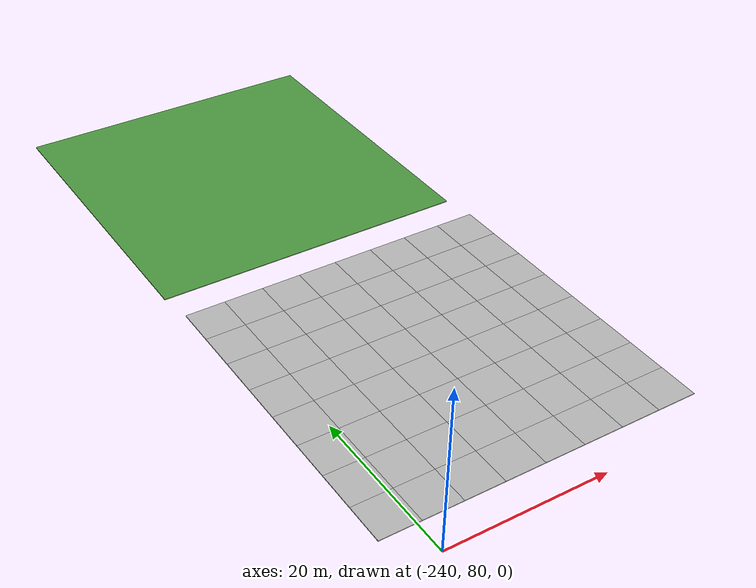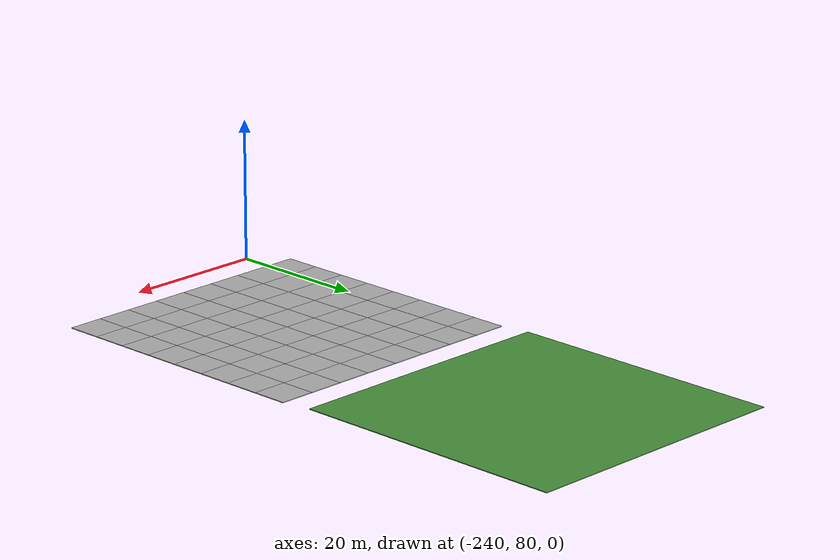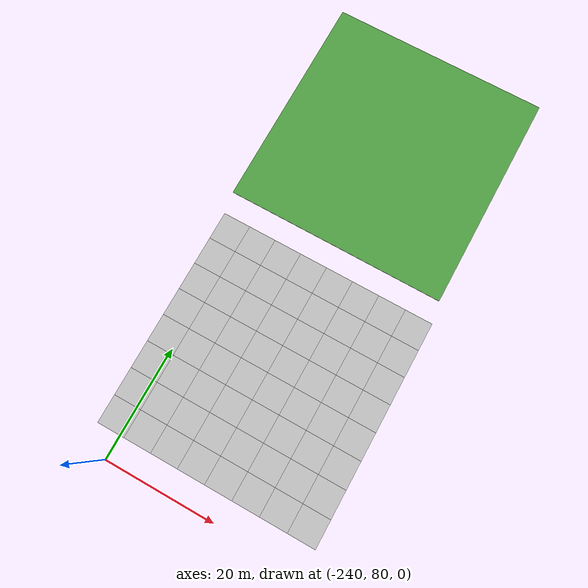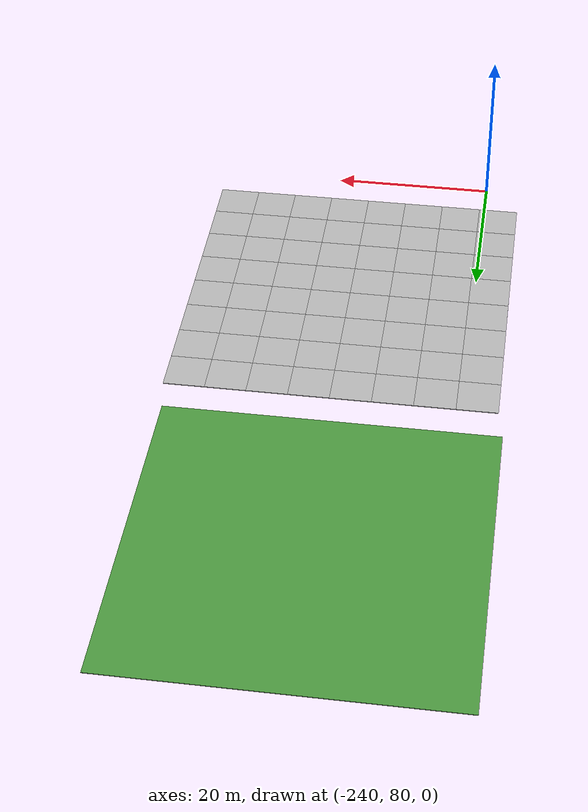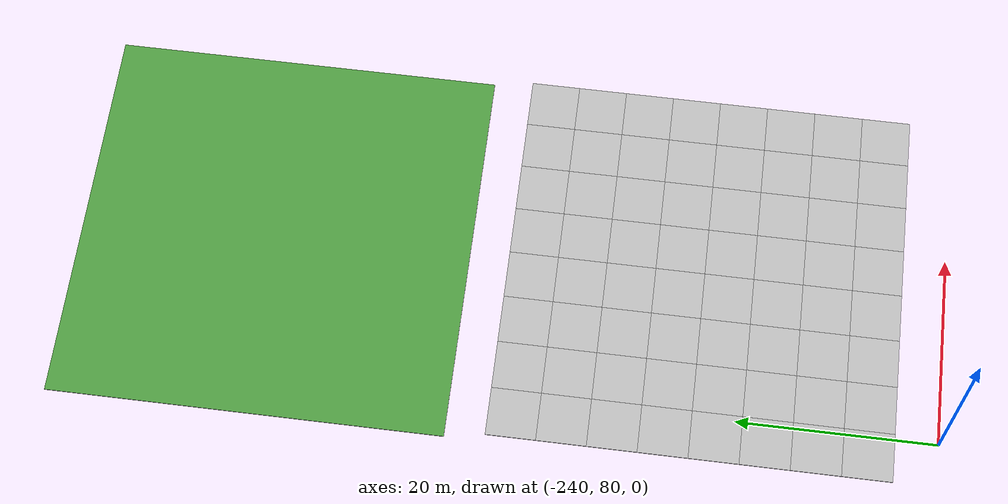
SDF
<sdf version="1.7">
 <world name="default">
  <model name="mud_plane_40x40_22">
   <model name="mud_plane_20x20">
    <model name="mud_plane">
     <static>1</static>
     <link name="link">
      <collision name="collision"><geometry><box><size>10 10 0.1</size></box></geometry></collision>
      <visual name="visual_1">
       <pose>-2.5 2.5 -0.05 0 -0 0</pose>
       <cast_shadows>0</cast_shadows>
       <geometry><box><size>5 5 0.1</size></box></geometry>
       <material>
        <script>
         <uri>model://mud_plane/materials/scripts</uri>
         <uri>model://mud_plane/materials/textures</uri>
         <name>vrc/mud</name>
        </script>
       </material>
      </visual>
      <visual name="visual_2">
       <pose>2.5 2.5 -0.05 0 -0 0</pose>
       <cast_shadows>0</cast_shadows>
       <geometry><box><size>5 5 0.1</size></box></geometry>
       <material>
        <script>
         <uri>model://mud_plane/materials/scripts</uri>
         <uri>model://mud_plane/materials/textures</uri>
         <name>vrc/mud</name>
        </script>
       </material>
      </visual>
      <visual name="visual_3">
       <pose>2.5 -2.5 -0.05 0 -0 0</pose>
       <cast_shadows>0</cast_shadows>
       <geometry><box><size>5 5 0.1</size></box></geometry>
       <material>
        <script>
         <uri>model://mud_plane/materials/scripts</uri>
         <uri>model://mud_plane/materials/textures</uri>
         <name>vrc/mud</name>
        </script>
       </material>
      </visual>
      <visual name="visual_4">
       <pose>-2.5 -2.5 -0.05 0 -0 0</pose>
       <cast_shadows>0</cast_shadows>
       <geometry><box><size>5 5 0.1</size></box></geometry>
       <material>
        <script>
         <uri>model://mud_plane/materials/scripts</uri>
         <uri>model://mud_plane/materials/textures</uri>
         <name>vrc/mud</name>
        </script>
       </material>
      </visual>
     </link>
     <pose>-4.99986 -4.99991 0 0 -0 0</pose>
    </model>
    <model name="mud_plane_0">
     <static>1</static>
     <link name="link">
      <collision name="collision"><geometry><box><size>10 10 0.1</size></box></geometry></collision>
      <visual name="visual_1">
       <pose>-2.5 2.5 -0.05 0 -0 0</pose>
       <cast_shadows>0</cast_shadows>
       <geometry><box><size>5 5 0.1</size></box></geometry>
       <material>
        <script>
         <uri>model://mud_plane/materials/scripts</uri>
         <uri>model://mud_plane/materials/textures</uri>
         <name>vrc/mud</name>
        </script>
       </material>
      </visual>
      <visual name="visual_2">
       <pose>2.5 2.5 -0.05 0 -0 0</pose>
       <cast_shadows>0</cast_shadows>
       <geometry><box><size>5 5 0.1</size></box></geometry>
       <material>
        <script>
         <uri>model://mud_plane/materials/scripts</uri>
         <uri>model://mud_plane/materials/textures</uri>
         <name>vrc/mud</name>
        </script>
       </material>
      </visual>
      <visual name="visual_3">
       <pose>2.5 -2.5 -0.05 0 -0 0</pose>
       <cast_shadows>0</cast_shadows>
       <geometry><box><size>5 5 0.1</size></box></geometry>
       <material>
        <script>
         <uri>model://mud_plane/materials/scripts</uri>
         <uri>model://mud_plane/materials/textures</uri>
         <name>vrc/mud</name>
        </script>
       </material>
      </visual>
      <visual name="visual_4">
       <pose>-2.5 -2.5 -0.05 0 -0 0</pose>
       <cast_shadows>0</cast_shadows>
       <geometry><box><size>5 5 0.1</size></box></geometry>
       <material>
        <script>
         <uri>model://mud_plane/materials/scripts</uri>
         <uri>model://mud_plane/materials/textures</uri>
         <name>vrc/mud</name>
        </script>
       </material>
      </visual>
     </link>
     <pose>-4.99946 4.99954 0 0 -0 0</pose>
    </model>
    <model name="mud_plane_1">
     <static>1</static>
     <link name="link">
      <collision name="collision"><geometry><box><size>10 10 0.1</size></box></geometry></collision>
      <visual name="visual_1">
       <pose>-2.5 2.5 -0.05 0 -0 0</pose>
       <cast_shadows>0</cast_shadows>
       <geometry><box><size>5 5 0.1</size></box></geometry>
       <material>
        <script>
         <uri>model://mud_plane/materials/scripts</uri>
         <uri>model://mud_plane/materials/textures</uri>
         <name>vrc/mud</name>
        </script>
       </material>
      </visual>
      <visual name="visual_2">
       <pose>2.5 2.5 -0.05 0 -0 0</pose>
       <cast_shadows>0</cast_shadows>
       <geometry><box><size>5 5 0.1</size></box></geometry>
       <material>
        <script>
         <uri>model://mud_plane/materials/scripts</uri>
         <uri>model://mud_plane/materials/textures</uri>
         <name>vrc/mud</name>
        </script>
       </material>
      </visual>
      <visual name="visual_3">
       <pose>2.5 -2.5 -0.05 0 -0 0</pose>
       <cast_shadows>0</cast_shadows>
       <geometry><box><size>5 5 0.1</size></box></geometry>
       <material>
        <script>
         <uri>model://mud_plane/materials/scripts</uri>
         <uri>model://mud_plane/materials/textures</uri>
         <name>vrc/mud</name>
        </script>
       </material>
      </visual>
      <visual name="visual_4">
       <pose>-2.5 -2.5 -0.05 0 -0 0</pose>
       <cast_shadows>0</cast_shadows>
       <geometry><box><size>5 5 0.1</size></box></geometry>
       <material>
        <script>
         <uri>model://mud_plane/materials/scripts</uri>
         <uri>model://mud_plane/materials/textures</uri>
         <name>vrc/mud</name>
        </script>
       </material>
      </visual>
     </link>
     <pose>4.99964 -4.99949 0 0 -0 0</pose>
    </model>
    <model name="mud_plane_2">
     <static>1</static>
     <link name="link">
      <collision name="collision"><geometry><box><size>10 10 0.1</size></box></geometry></collision>
      <visual name="visual_1">
       <pose>-2.5 2.5 -0.05 0 -0 0</pose>
       <cast_shadows>0</cast_shadows>
       <geometry><box><size>5 5 0.1</size></box></geometry>
       <material>
        <script>
         <uri>model://mud_plane/materials/scripts</uri>
         <uri>model://mud_plane/materials/textures</uri>
         <name>vrc/mud</name>
        </script>
       </material>
      </visual>
      <visual name="visual_2">
       <pose>2.5 2.5 -0.05 0 -0 0</pose>
       <cast_shadows>0</cast_shadows>
       <geometry><box><size>5 5 0.1</size></box></geometry>
       <material>
        <script>
         <uri>model://mud_plane/materials/scripts</uri>
         <uri>model://mud_plane/materials/textures</uri>
         <name>vrc/mud</name>
        </script>
       </material>
      </visual>
      <visual name="visual_3">
       <pose>2.5 -2.5 -0.05 0 -0 0</pose>
       <cast_shadows>0</cast_shadows>
       <geometry><box><size>5 5 0.1</size></box></geometry>
       <material>
        <script>
         <uri>model://mud_plane/materials/scripts</uri>
         <uri>model://mud_plane/materials/textures</uri>
         <name>vrc/mud</name>
        </script>
       </material>
      </visual>
      <visual name="visual_4">
       <pose>-2.5 -2.5 -0.05 0 -0 0</pose>
       <cast_shadows>0</cast_shadows>
       <geometry><box><size>5 5 0.1</size></box></geometry>
       <material>
        <script>
         <uri>model://mud_plane/materials/scripts</uri>
         <uri>model://mud_plane/materials/textures</uri>
         <name>vrc/mud</name>
        </script>
       </material>
      </visual>
     </link>
     <pose>4.99967 4.99986 0 0 -0 0</pose>
    </model>
    <static>0</static>
    <pose>-9.99895 9.99843 0 0 -0 0</pose>
   </model>
   <model name="mud_plane_20x20_0">
    <model name="mud_plane">
     <static>1</static>
     <link name="link">
      <collision name="collision"><geometry><box><size>10 10 0.1</size></box></geometry></collision>
      <visual name="visual_1">
       <pose>-2.5 2.5 -0.05 0 -0 0</pose>
       <cast_shadows>0</cast_shadows>
       <geometry><box><size>5 5 0.1</size></box></geometry>
       <material>
        <script>
         <uri>model://mud_plane/materials/scripts</uri>
         <uri>model://mud_plane/materials/textures</uri>
         <name>vrc/mud</name>
        </script>
       </material>
      </visual>
      <visual name="visual_2">
       <pose>2.5 2.5 -0.05 0 -0 0</pose>
       <cast_shadows>0</cast_shadows>
       <geometry><box><size>5 5 0.1</size></box></geometry>
       <material>
        <script>
         <uri>model://mud_plane/materials/scripts</uri>
         <uri>model://mud_plane/materials/textures</uri>
         <name>vrc/mud</name>
        </script>
       </material>
      </visual>
      <visual name="visual_3">
       <pose>2.5 -2.5 -0.05 0 -0 0</pose>
       <cast_shadows>0</cast_shadows>
       <geometry><box><size>5 5 0.1</size></box></geometry>
       <material>
        <script>
         <uri>model://mud_plane/materials/scripts</uri>
         <uri>model://mud_plane/materials/textures</uri>
         <name>vrc/mud</name>
        </script>
       </material>
      </visual>
      <visual name="visual_4">
       <pose>-2.5 -2.5 -0.05 0 -0 0</pose>
       <cast_shadows>0</cast_shadows>
       <geometry><box><size>5 5 0.1</size></box></geometry>
       <material>
        <script>
         <uri>model://mud_plane/materials/scripts</uri>
         <uri>model://mud_plane/materials/textures</uri>
         <name>vrc/mud</name>
        </script>
       </material>
      </visual>
     </link>
     <pose>-4.99986 -4.99991 0 0 -0 0</pose>
    </model>
    <model name="mud_plane_0">
     <static>1</static>
     <link name="link">
      <collision name="collision"><geometry><box><size>10 10 0.1</size></box></geometry></collision>
      <visual name="visual_1">
       <pose>-2.5 2.5 -0.05 0 -0 0</pose>
       <cast_shadows>0</cast_shadows>
       <geometry><box><size>5 5 0.1</size></box></geometry>
       <material>
        <script>
         <uri>model://mud_plane/materials/scripts</uri>
         <uri>model://mud_plane/materials/textures</uri>
         <name>vrc/mud</name>
        </script>
       </material>
      </visual>
      <visual name="visual_2">
       <pose>2.5 2.5 -0.05 0 -0 0</pose>
       <cast_shadows>0</cast_shadows>
       <geometry><box><size>5 5 0.1</size></box></geometry>
       <material>
        <script>
         <uri>model://mud_plane/materials/scripts</uri>
         <uri>model://mud_plane/materials/textures</uri>
         <name>vrc/mud</name>
        </script>
       </material>
      </visual>
      <visual name="visual_3">
       <pose>2.5 -2.5 -0.05 0 -0 0</pose>
       <cast_shadows>0</cast_shadows>
       <geometry><box><size>5 5 0.1</size></box></geometry>
       <material>
        <script>
         <uri>model://mud_plane/materials/scripts</uri>
         <uri>model://mud_plane/materials/textures</uri>
         <name>vrc/mud</name>
        </script>
       </material>
      </visual>
      <visual name="visual_4">
       <pose>-2.5 -2.5 -0.05 0 -0 0</pose>
       <cast_shadows>0</cast_shadows>
       <geometry><box><size>5 5 0.1</size></box></geometry>
       <material>
        <script>
         <uri>model://mud_plane/materials/scripts</uri>
         <uri>model://mud_plane/materials/textures</uri>
         <name>vrc/mud</name>
        </script>
       </material>
      </visual>
     </link>
     <pose>-4.99946 4.99954 0 0 -0 0</pose>
    </model>
    <model name="mud_plane_1">
     <static>1</static>
     <link name="link">
      <collision name="collision"><geometry><box><size>10 10 0.1</size></box></geometry></collision>
      <visual name="visual_1">
       <pose>-2.5 2.5 -0.05 0 -0 0</pose>
       <cast_shadows>0</cast_shadows>
       <geometry><box><size>5 5 0.1</size></box></geometry>
       <material>
        <script>
         <uri>model://mud_plane/materials/scripts</uri>
         <uri>model://mud_plane/materials/textures</uri>
         <name>vrc/mud</name>
        </script>
       </material>
      </visual>
      <visual name="visual_2">
       <pose>2.5 2.5 -0.05 0 -0 0</pose>
       <cast_shadows>0</cast_shadows>
       <geometry><box><size>5 5 0.1</size></box></geometry>
       <material>
        <script>
         <uri>model://mud_plane/materials/scripts</uri>
         <uri>model://mud_plane/materials/textures</uri>
         <name>vrc/mud</name>
        </script>
       </material>
      </visual>
      <visual name="visual_3">
       <pose>2.5 -2.5 -0.05 0 -0 0</pose>
       <cast_shadows>0</cast_shadows>
       <geometry><box><size>5 5 0.1</size></box></geometry>
       <material>
        <script>
         <uri>model://mud_plane/materials/scripts</uri>
         <uri>model://mud_plane/materials/textures</uri>
         <name>vrc/mud</name>
        </script>
       </material>
      </visual>
      <visual name="visual_4">
       <pose>-2.5 -2.5 -0.05 0 -0 0</pose>
       <cast_shadows>0</cast_shadows>
       <geometry><box><size>5 5 0.1</size></box></geometry>
       <material>
        <script>
         <uri>model://mud_plane/materials/scripts</uri>
         <uri>model://mud_plane/materials/textures</uri>
         <name>vrc/mud</name>
        </script>
       </material>
      </visual>
     </link>
     <pose>4.99964 -4.99949 0 0 -0 0</pose>
    </model>
    <model name="mud_plane_2">
     <static>1</static>
     <link name="link">
      <collision name="collision"><geometry><box><size>10 10 0.1</size></box></geometry></collision>
      <visual name="visual_1">
       <pose>-2.5 2.5 -0.05 0 -0 0</pose>
       <cast_shadows>0</cast_shadows>
       <geometry><box><size>5 5 0.1</size></box></geometry>
       <material>
        <script>
         <uri>model://mud_plane/materials/scripts</uri>
         <uri>model://mud_plane/materials/textures</uri>
         <name>vrc/mud</name>
        </script>
       </material>
      </visual>
      <visual name="visual_2">
       <pose>2.5 2.5 -0.05 0 -0 0</pose>
       <cast_shadows>0</cast_shadows>
       <geometry><box><size>5 5 0.1</size></box></geometry>
       <material>
        <script>
         <uri>model://mud_plane/materials/scripts</uri>
         <uri>model://mud_plane/materials/textures</uri>
         <name>vrc/mud</name>
        </script>
       </material>
      </visual>
      <visual name="visual_3">
       <pose>2.5 -2.5 -0.05 0 -0 0</pose>
       <cast_shadows>0</cast_shadows>
       <geometry><box><size>5 5 0.1</size></box></geometry>
       <material>
        <script>
         <uri>model://mud_plane/materials/scripts</uri>
         <uri>model://mud_plane/materials/textures</uri>
         <name>vrc/mud</name>
        </script>
       </material>
      </visual>
      <visual name="visual_4">
       <pose>-2.5 -2.5 -0.05 0 -0 0</pose>
       <cast_shadows>0</cast_shadows>
       <geometry><box><size>5 5 0.1</size></box></geometry>
       <material>
        <script>
         <uri>model://mud_plane/materials/scripts</uri>
         <uri>model://mud_plane/materials/textures</uri>
         <name>vrc/mud</name>
        </script>
       </material>
      </visual>
     </link>
     <pose>4.99967 4.99986 0 0 -0 0</pose>
    </model>
    <static>0</static>
    <pose>9.99933 9.9997 0 0 -0 0</pose>
   </model>
   <model name="mud_plane_20x20_1">
    <model name="mud_plane">
     <static>1</static>
     <link name="link">
      <collision name="collision"><geometry><box><size>10 10 0.1</size></box></geometry></collision>
      <visual name="visual_1">
       <pose>-2.5 2.5 -0.05 0 -0 0</pose>
       <cast_shadows>0</cast_shadows>
       <geometry><box><size>5 5 0.1</size></box></geometry>
       <material>
        <script>
         <uri>model://mud_plane/materials/scripts</uri>
         <uri>model://mud_plane/materials/textures</uri>
         <name>vrc/mud</name>
        </script>
       </material>
      </visual>
      <visual name="visual_2">
       <pose>2.5 2.5 -0.05 0 -0 0</pose>
       <cast_shadows>0</cast_shadows>
       <geometry><box><size>5 5 0.1</size></box></geometry>
       <material>
        <script>
         <uri>model://mud_plane/materials/scripts</uri>
         <uri>model://mud_plane/materials/textures</uri>
         <name>vrc/mud</name>
        </script>
       </material>
      </visual>
      <visual name="visual_3">
       <pose>2.5 -2.5 -0.05 0 -0 0</pose>
       <cast_shadows>0</cast_shadows>
       <geometry><box><size>5 5 0.1</size></box></geometry>
       <material>
        <script>
         <uri>model://mud_plane/materials/scripts</uri>
         <uri>model://mud_plane/materials/textures</uri>
         <name>vrc/mud</name>
        </script>
       </material>
      </visual>
      <visual name="visual_4">
       <pose>-2.5 -2.5 -0.05 0 -0 0</pose>
       <cast_shadows>0</cast_shadows>
       <geometry><box><size>5 5 0.1</size></box></geometry>
       <material>
        <script>
         <uri>model://mud_plane/materials/scripts</uri>
         <uri>model://mud_plane/materials/textures</uri>
         <name>vrc/mud</name>
        </script>
       </material>
      </visual>
     </link>
     <pose>-4.99986 -4.99991 0 0 -0 0</pose>
    </model>
    <model name="mud_plane_0">
     <static>1</static>
     <link name="link">
      <collision name="collision"><geometry><box><size>10 10 0.1</size></box></geometry></collision>
      <visual name="visual_1">
       <pose>-2.5 2.5 -0.05 0 -0 0</pose>
       <cast_shadows>0</cast_shadows>
       <geometry><box><size>5 5 0.1</size></box></geometry>
       <material>
        <script>
         <uri>model://mud_plane/materials/scripts</uri>
         <uri>model://mud_plane/materials/textures</uri>
         <name>vrc/mud</name>
        </script>
       </material>
      </visual>
      <visual name="visual_2">
       <pose>2.5 2.5 -0.05 0 -0 0</pose>
       <cast_shadows>0</cast_shadows>
       <geometry><box><size>5 5 0.1</size></box></geometry>
       <material>
        <script>
         <uri>model://mud_plane/materials/scripts</uri>
         <uri>model://mud_plane/materials/textures</uri>
         <name>vrc/mud</name>
        </script>
       </material>
      </visual>
      <visual name="visual_3">
       <pose>2.5 -2.5 -0.05 0 -0 0</pose>
       <cast_shadows>0</cast_shadows>
       <geometry><box><size>5 5 0.1</size></box></geometry>
       <material>
        <script>
         <uri>model://mud_plane/materials/scripts</uri>
         <uri>model://mud_plane/materials/textures</uri>
         <name>vrc/mud</name>
        </script>
       </material>
      </visual>
      <visual name="visual_4">
       <pose>-2.5 -2.5 -0.05 0 -0 0</pose>
       <cast_shadows>0</cast_shadows>
       <geometry><box><size>5 5 0.1</size></box></geometry>
       <material>
        <script>
         <uri>model://mud_plane/materials/scripts</uri>
         <uri>model://mud_plane/materials/textures</uri>
         <name>vrc/mud</name>
        </script>
       </material>
      </visual>
     </link>
     <pose>-4.99946 4.99954 0 0 -0 0</pose>
    </model>
    <model name="mud_plane_1">
     <static>1</static>
     <link name="link">
      <collision name="collision"><geometry><box><size>10 10 0.1</size></box></geometry></collision>
      <visual name="visual_1">
       <pose>-2.5 2.5 -0.05 0 -0 0</pose>
       <cast_shadows>0</cast_shadows>
       <geometry><box><size>5 5 0.1</size></box></geometry>
       <material>
        <script>
         <uri>model://mud_plane/materials/scripts</uri>
         <uri>model://mud_plane/materials/textures</uri>
         <name>vrc/mud</name>
        </script>
       </material>
      </visual>
      <visual name="visual_2">
       <pose>2.5 2.5 -0.05 0 -0 0</pose>
       <cast_shadows>0</cast_shadows>
       <geometry><box><size>5 5 0.1</size></box></geometry>
       <material>
        <script>
         <uri>model://mud_plane/materials/scripts</uri>
         <uri>model://mud_plane/materials/textures</uri>
         <name>vrc/mud</name>
        </script>
       </material>
      </visual>
      <visual name="visual_3">
       <pose>2.5 -2.5 -0.05 0 -0 0</pose>
       <cast_shadows>0</cast_shadows>
       <geometry><box><size>5 5 0.1</size></box></geometry>
       <material>
        <script>
         <uri>model://mud_plane/materials/scripts</uri>
         <uri>model://mud_plane/materials/textures</uri>
         <name>vrc/mud</name>
        </script>
       </material>
      </visual>
      <visual name="visual_4">
       <pose>-2.5 -2.5 -0.05 0 -0 0</pose>
       <cast_shadows>0</cast_shadows>
       <geometry><box><size>5 5 0.1</size></box></geometry>
       <material>
        <script>
         <uri>model://mud_plane/materials/scripts</uri>
         <uri>model://mud_plane/materials/textures</uri>
         <name>vrc/mud</name>
        </script>
       </material>
      </visual>
     </link>
     <pose>4.99964 -4.99949 0 0 -0 0</pose>
    </model>
    <model name="mud_plane_2">
     <static>1</static>
     <link name="link">
      <collision name="collision"><geometry><box><size>10 10 0.1</size></box></geometry></collision>
      <visual name="visual_1">
       <pose>-2.5 2.5 -0.05 0 -0 0</pose>
       <cast_shadows>0</cast_shadows>
       <geometry><box><size>5 5 0.1</size></box></geometry>
       <material>
        <script>
         <uri>model://mud_plane/materials/scripts</uri>
         <uri>model://mud_plane/materials/textures</uri>
         <name>vrc/mud</name>
        </script>
       </material>
      </visual>
      <visual name="visual_2">
       <pose>2.5 2.5 -0.05 0 -0 0</pose>
       <cast_shadows>0</cast_shadows>
       <geometry><box><size>5 5 0.1</size></box></geometry>
       <material>
        <script>
         <uri>model://mud_plane/materials/scripts</uri>
         <uri>model://mud_plane/materials/textures</uri>
         <name>vrc/mud</name>
        </script>
       </material>
      </visual>
      <visual name="visual_3">
       <pose>2.5 -2.5 -0.05 0 -0 0</pose>
       <cast_shadows>0</cast_shadows>
       <geometry><box><size>5 5 0.1</size></box></geometry>
       <material>
        <script>
         <uri>model://mud_plane/materials/scripts</uri>
         <uri>model://mud_plane/materials/textures</uri>
         <name>vrc/mud</name>
        </script>
       </material>
      </visual>
      <visual name="visual_4">
       <pose>-2.5 -2.5 -0.05 0 -0 0</pose>
       <cast_shadows>0</cast_shadows>
       <geometry><box><size>5 5 0.1</size></box></geometry>
       <material>
        <script>
         <uri>model://mud_plane/materials/scripts</uri>
         <uri>model://mud_plane/materials/textures</uri>
         <name>vrc/mud</name>
        </script>
       </material>
      </visual>
     </link>
     <pose>4.99967 4.99986 0 0 -0 0</pose>
    </model>
    <static>0</static>
    <pose>9.9993 -9.99877 0 0 -0 0</pose>
   </model>
   <model name="mud_plane_20x20_2">
    <model name="mud_plane">
     <static>1</static>
     <link name="link">
      <collision name="collision"><geometry><box><size>10 10 0.1</size></box></geometry></collision>
      <visual name="visual_1">
       <pose>-2.5 2.5 -0.05 0 -0 0</pose>
       <cast_shadows>0</cast_shadows>
       <geometry><box><size>5 5 0.1</size></box></geometry>
       <material>
        <script>
         <uri>model://mud_plane/materials/scripts</uri>
         <uri>model://mud_plane/materials/textures</uri>
         <name>vrc/mud</name>
        </script>
       </material>
      </visual>
      <visual name="visual_2">
       <pose>2.5 2.5 -0.05 0 -0 0</pose>
       <cast_shadows>0</cast_shadows>
       <geometry><box><size>5 5 0.1</size></box></geometry>
       <material>
        <script>
         <uri>model://mud_plane/materials/scripts</uri>
         <uri>model://mud_plane/materials/textures</uri>
         <name>vrc/mud</name>
        </script>
       </material>
      </visual>
      <visual name="visual_3">
       <pose>2.5 -2.5 -0.05 0 -0 0</pose>
       <cast_shadows>0</cast_shadows>
       <geometry><box><size>5 5 0.1</size></box></geometry>
       <material>
        <script>
         <uri>model://mud_plane/materials/scripts</uri>
         <uri>model://mud_plane/materials/textures</uri>
         <name>vrc/mud</name>
        </script>
       </material>
      </visual>
      <visual name="visual_4">
       <pose>-2.5 -2.5 -0.05 0 -0 0</pose>
       <cast_shadows>0</cast_shadows>
       <geometry><box><size>5 5 0.1</size></box></geometry>
       <material>
        <script>
         <uri>model://mud_plane/materials/scripts</uri>
         <uri>model://mud_plane/materials/textures</uri>
         <name>vrc/mud</name>
        </script>
       </material>
      </visual>
     </link>
     <pose>-4.99986 -4.99991 0 0 -0 0</pose>
    </model>
    <model name="mud_plane_0">
     <static>1</static>
     <link name="link">
      <collision name="collision"><geometry><box><size>10 10 0.1</size></box></geometry></collision>
      <visual name="visual_1">
       <pose>-2.5 2.5 -0.05 0 -0 0</pose>
       <cast_shadows>0</cast_shadows>
       <geometry><box><size>5 5 0.1</size></box></geometry>
       <material>
        <script>
         <uri>model://mud_plane/materials/scripts</uri>
         <uri>model://mud_plane/materials/textures</uri>
         <name>vrc/mud</name>
        </script>
       </material>
      </visual>
      <visual name="visual_2">
       <pose>2.5 2.5 -0.05 0 -0 0</pose>
       <cast_shadows>0</cast_shadows>
       <geometry><box><size>5 5 0.1</size></box></geometry>
       <material>
        <script>
         <uri>model://mud_plane/materials/scripts</uri>
         <uri>model://mud_plane/materials/textures</uri>
         <name>vrc/mud</name>
        </script>
       </material>
      </visual>
      <visual name="visual_3">
       <pose>2.5 -2.5 -0.05 0 -0 0</pose>
       <cast_shadows>0</cast_shadows>
       <geometry><box><size>5 5 0.1</size></box></geometry>
       <material>
        <script>
         <uri>model://mud_plane/materials/scripts</uri>
         <uri>model://mud_plane/materials/textures</uri>
         <name>vrc/mud</name>
        </script>
       </material>
      </visual>
      <visual name="visual_4">
       <pose>-2.5 -2.5 -0.05 0 -0 0</pose>
       <cast_shadows>0</cast_shadows>
       <geometry><box><size>5 5 0.1</size></box></geometry>
       <material>
        <script>
         <uri>model://mud_plane/materials/scripts</uri>
         <uri>model://mud_plane/materials/textures</uri>
         <name>vrc/mud</name>
        </script>
       </material>
      </visual>
     </link>
     <pose>-4.99946 4.99954 0 0 -0 0</pose>
    </model>
    <model name="mud_plane_1">
     <static>1</static>
     <link name="link">
      <collision name="collision"><geometry><box><size>10 10 0.1</size></box></geometry></collision>
      <visual name="visual_1">
       <pose>-2.5 2.5 -0.05 0 -0 0</pose>
       <cast_shadows>0</cast_shadows>
       <geometry><box><size>5 5 0.1</size></box></geometry>
       <material>
        <script>
         <uri>model://mud_plane/materials/scripts</uri>
         <uri>model://mud_plane/materials/textures</uri>
         <name>vrc/mud</name>
        </script>
       </material>
      </visual>
      <visual name="visual_2">
       <pose>2.5 2.5 -0.05 0 -0 0</pose>
       <cast_shadows>0</cast_shadows>
       <geometry><box><size>5 5 0.1</size></box></geometry>
       <material>
        <script>
         <uri>model://mud_plane/materials/scripts</uri>
         <uri>model://mud_plane/materials/textures</uri>
         <name>vrc/mud</name>
        </script>
       </material>
      </visual>
      <visual name="visual_3">
       <pose>2.5 -2.5 -0.05 0 -0 0</pose>
       <cast_shadows>0</cast_shadows>
       <geometry><box><size>5 5 0.1</size></box></geometry>
       <material>
        <script>
         <uri>model://mud_plane/materials/scripts</uri>
         <uri>model://mud_plane/materials/textures</uri>
         <name>vrc/mud</name>
        </script>
       </material>
      </visual>
      <visual name="visual_4">
       <pose>-2.5 -2.5 -0.05 0 -0 0</pose>
       <cast_shadows>0</cast_shadows>
       <geometry><box><size>5 5 0.1</size></box></geometry>
       <material>
        <script>
         <uri>model://mud_plane/materials/scripts</uri>
         <uri>model://mud_plane/materials/textures</uri>
         <name>vrc/mud</name>
        </script>
       </material>
      </visual>
     </link>
     <pose>4.99964 -4.99949 0 0 -0 0</pose>
    </model>
    <model name="mud_plane_2">
     <static>1</static>
     <link name="link">
      <collision name="collision"><geometry><box><size>10 10 0.1</size></box></geometry></collision>
      <visual name="visual_1">
       <pose>-2.5 2.5 -0.05 0 -0 0</pose>
       <cast_shadows>0</cast_shadows>
       <geometry><box><size>5 5 0.1</size></box></geometry>
       <material>
        <script>
         <uri>model://mud_plane/materials/scripts</uri>
         <uri>model://mud_plane/materials/textures</uri>
         <name>vrc/mud</name>
        </script>
       </material>
      </visual>
      <visual name="visual_2">
       <pose>2.5 2.5 -0.05 0 -0 0</pose>
       <cast_shadows>0</cast_shadows>
       <geometry><box><size>5 5 0.1</size></box></geometry>
       <material>
        <script>
         <uri>model://mud_plane/materials/scripts</uri>
         <uri>model://mud_plane/materials/textures</uri>
         <name>vrc/mud</name>
        </script>
       </material>
      </visual>
      <visual name="visual_3">
       <pose>2.5 -2.5 -0.05 0 -0 0</pose>
       <cast_shadows>0</cast_shadows>
       <geometry><box><size>5 5 0.1</size></box></geometry>
       <material>
        <script>
         <uri>model://mud_plane/materials/scripts</uri>
         <uri>model://mud_plane/materials/textures</uri>
         <name>vrc/mud</name>
        </script>
       </material>
      </visual>
      <visual name="visual_4">
       <pose>-2.5 -2.5 -0.05 0 -0 0</pose>
       <cast_shadows>0</cast_shadows>
       <geometry><box><size>5 5 0.1</size></box></geometry>
       <material>
        <script>
         <uri>model://mud_plane/materials/scripts</uri>
         <uri>model://mud_plane/materials/textures</uri>
         <name>vrc/mud</name>
        </script>
       </material>
      </visual>
     </link>
     <pose>4.99967 4.99986 0 0 -0 0</pose>
    </model>
    <static>0</static>
    <pose>-9.99969 -9.99935 0 0 -0 0</pose>
   </model>
   <static>0</static>
   <pose>-224.337 104.243 0 0 -0 0</pose>
  </model>
  <model name="grass_plane_40x40_14">
   <pose>-225.046 148.235 -0.05 0 -0 0</pose>
   <static>1</static>
   <link name="link">
    <collision name="collision"><geometry><box><size>40 40 0.1</size></box></geometry></collision>
    <visual name="grass">
     <cast_shadows>0</cast_shadows>
     <geometry><box><size>40 40 0.1</size></box></geometry>
     <material>
      <script><uri>file://media/materials/scripts/gazebo.material</uri><name>Gazebo/Grass</name></script>
     </material>
    </visual>
   </link>
  </model>
 </world>
</sdf>
